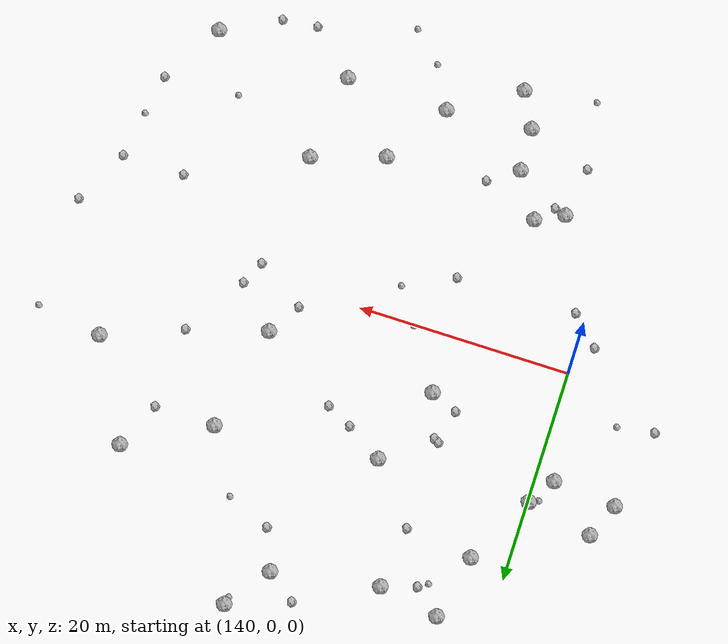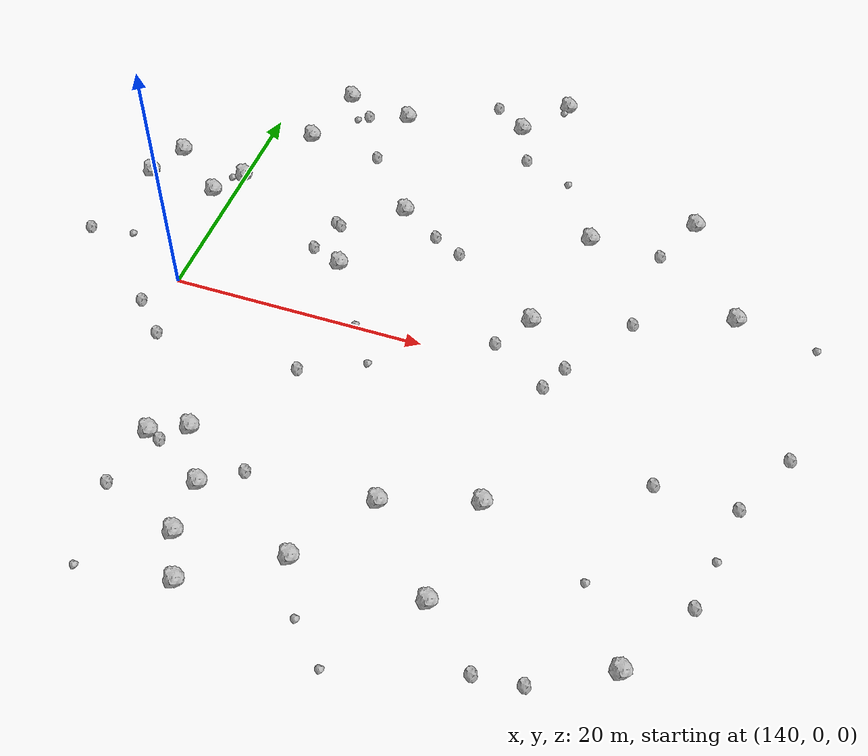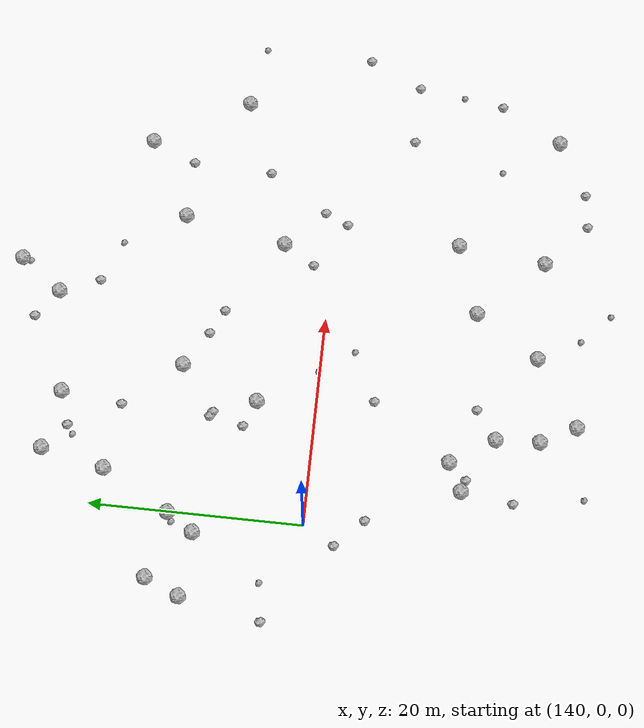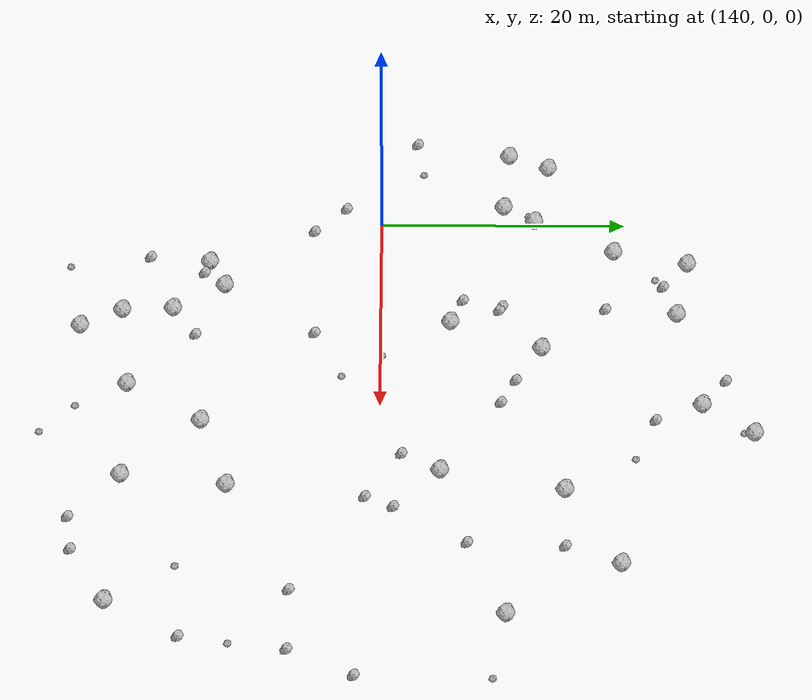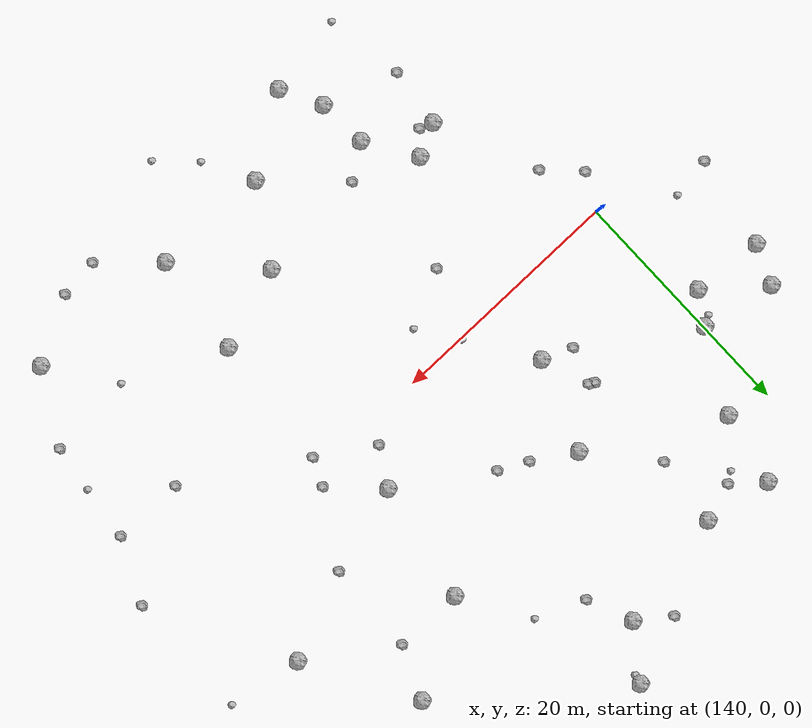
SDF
<sdf version="1.6">
 <world name="default">
  <include><uri>model://sun</uri></include>
  <model name="rock1_4_2">
   <include><uri>model://rock1</uri><pose>144.64250192313904 -14.090632971041494 0.5 0 0 0</pose></include>
  </model>
  <model name="rock1_4_3">
   <include><uri>model://rock1</uri><pose>169.15276391423814 14.626261997600743 0.5 0 0 0</pose></include>
  </model>
  <model name="rock1_4_4">
   <include><uri>model://rock1</uri><pose>167.18632134444454 4.754083272207637 0.5 0 0 0</pose></include>
  </model>
  <model name="rock1_4_5">
   <include><uri>model://rock1</uri><pose>167.7813527760365 -20.528619058137576 0.5 0 0 0</pose></include>
  </model>
  <model name="rock1_4_6">
   <include><uri>model://rock1</uri><pose>151.237564090406 5.610120131703425 0.5 0 0 0</pose></include>
  </model>
  <model name="rock1_4_7">
   <include><uri>model://rock1</uri><pose>176.74659971532765 18.913603670674448 0.5 0 0 0</pose></include>
  </model>
  <model name="rock1_4_8">
   <include><uri>model://rock1</uri><pose>149.8414704636917 -16.948022600745187 0.5 0 0 0</pose></include>
  </model>
  <model name="rock1_4_9">
   <include><uri>model://rock1</uri><pose>132.4435110493459 10.548731007284772 0.5 0 0 0</pose></include>
  </model>
  <model name="rock1_4_10">
   <include><uri>model://rock1</uri><pose>162.0222743503212 -14.356697334256124 0.5 0 0 0</pose></include>
  </model>
  <model name="rock1_4_11">
   <include><uri>model://rock1</uri><pose>180.68596905539462 -21.278496587072233 0.5 0 0 0</pose></include>
  </model>
  <model name="rock1_4_12">
   <include><uri>model://rock1</uri><pose>150.31614567877952 24.005497496785033 0.5 0 0 0</pose></include>
  </model>
  <model name="rock1_4_13">
   <include><uri>model://rock1</uri><pose>147.2605055158869 -12.80644516240374 0.5 0 0 0</pose></include>
  </model>
  <model name="rock1_4_14">
   <include><uri>model://rock1</uri><pose>181.82023672058972 9.853743029048815 0.5 0 0 0</pose></include>
  </model>
  <model name="rock1_4_15">
   <include><uri>model://rock1</uri><pose>133.81482526031587 13.773937729828702 0.5 0 0 0</pose></include>
  </model>
  <model name="rock1_4_16">
   <include><uri>model://rock1</uri><pose>150.0542052128294 -21.073131671114638 0.5 0 0 0</pose></include>
  </model>
  <model name="rock1_4_17">
   <include><uri>model://rock1</uri><pose>151.7894506981589 -24.431227533101392 0.5 0 0 0</pose></include>
  </model>
  <model name="rock1_4_18">
   <include><uri>model://rock1</uri><pose>163.13949806896662 29.81720338837848 0.5 0 0 0</pose></include>
  </model>
  <model name="rock1_4_19">
   <include><uri>model://rock1</uri><pose>154.07407073991988 12.971375293953272 0.5 0 0 0</pose></include>
  </model>
  <model name="rock1_4_20">
   <include><uri>model://rock1</uri><pose>158.11752959122077 -20.385787050005714 0.5 0 0 0</pose></include>
  </model>
  <model name="rock1_4_21">
   <include><uri>model://rock1</uri><pose>144.71885524077487 25.02038871296856 0.5 0 0 0</pose></include>
  </model>
  <model name="rock1_4_22">
   <include><uri>model://rock1</uri><pose>139.93554473795058 12.556926336063704 0.5 0 0 0</pose></include>
  </model>
  <model name="rock1_4_23">
   <include><uri>model://rock1</uri><pose>143.40151985656718 19.008981676477575 0.5 0 0 0</pose></include>
  </model>
  <model name="rock1_4_24">
   <include><uri>model://rock1</uri><pose>138.32663809733853 10.04192558386245 0.5 0 0 0</pose></include>
  </model>
  <model name="rock1_4_25">
   <include><uri>model://rock1</uri><pose>168.77348780011923 -12.14886064882317 0.5 0 0 0</pose></include>
  </model>
  <model name="rock1_4_26">
   <include><uri>model://rock1</uri><pose>160.15200510839117 25.75752766854547 0.5 0 0 0</pose></include>
  </model>
  <model name="rock2_4_0">
   <include><uri>model://rock2</uri><pose>152.33868534174414 -5.386155312732875 0.3 0 0 0</pose></include>
  </model>
  <model name="rock2_4_1">
   <include><uri>model://rock2</uri><pose>170.85324932848198 1.0940295219142655 0.3 0 0 0</pose></include>
  </model>
  <model name="rock2_4_2">
   <include><uri>model://rock2</uri><pose>165.30479063540196 1.7214932243329066 0.3 0 0 0</pose></include>
  </model>
  <model name="rock2_4_3">
   <include><uri>model://rock2</uri><pose>130.91231208686796 2.9451184628654232 0.3 0 0 0</pose></include>
  </model>
  <model name="rock2_4_4">
   <include><uri>model://rock2</uri><pose>149.793692302538 9.601223200955317 0.3 0 0 0</pose></include>
  </model>
  <model name="rock2_4_5">
   <include><uri>model://rock2</uri><pose>157.43607776296477 27.763638487406126 0.3 0 0 0</pose></include>
  </model>
  <model name="rock2_4_6">
   <include><uri>model://rock2</uri><pose>147.13028439252207 22.997591504285467 0.3 0 0 0</pose></include>
  </model>
  <model name="rock2_4_7">
   <include><uri>model://rock2</uri><pose>149.65201668694192 18.236371720773825 0.3 0 0 0</pose></include>
  </model>
  <model name="rock2_4_8">
   <include><uri>model://rock2</uri><pose>172.026787449361 -24.47590583455101 0.3 0 0 0</pose></include>
  </model>
  <model name="rock2_4_9">
   <include><uri>model://rock2</uri><pose>174.83691645942193 14.592409725688839 0.3 0 0 0</pose></include>
  </model>
  <model name="rock2_4_10">
   <include><uri>model://rock2</uri><pose>161.68039154116477 22.015994212397423 0.3 0 0 0</pose></include>
  </model>
  <model name="rock2_4_11">
   <include><uri>model://rock2</uri><pose>174.5162425059084 6.9004061759913 0.3 0 0 0</pose></include>
  </model>
  <model name="rock2_4_12">
   <include><uri>model://rock2</uri><pose>138.41761832313136 -2.9266801318731197 0.3 0 0 0</pose></include>
  </model>
  <model name="rock2_4_13">
   <include><uri>model://rock2</uri><pose>175.35159071288595 -24.12482453125274 0.3 0 0 0</pose></include>
  </model>
  <model name="rock2_4_14">
   <include><uri>model://rock2</uri><pose>185.29607053182704 -7.027791906840289 0.3 0 0 0</pose></include>
  </model>
  <model name="rock2_4_15">
   <include><uri>model://rock2</uri><pose>187.84227829215794 -1.826869797795446 0.3 0 0 0</pose></include>
  </model>
  <model name="rock2_4_16">
   <include><uri>model://rock2</uri><pose>145.71731062263535 -14.474749270492342 0.3 0 0 0</pose></include>
  </model>
  <model name="rock2_4_17">
   <include><uri>model://rock2</uri><pose>143.97454029756923 -18.95811659782916 0.3 0 0 0</pose></include>
  </model>
  <model name="rock2_4_18">
   <include><uri>model://rock2</uri><pose>179.37511406260603 -6.966660972026652 0.3 0 0 0</pose></include>
  </model>
  <model name="rock2_4_19">
   <include><uri>model://rock2</uri><pose>149.33955343752518 9.843810360071366 0.3 0 0 0</pose></include>
  </model>
  <model name="rock2_4_20">
   <include><uri>model://rock2</uri><pose>141.00958390751254 -5.543040418836181 0.3 0 0 0</pose></include>
  </model>
  <model name="rock2_4_21">
   <include><uri>model://rock2</uri><pose>157.44810920924266 10.879435630612008 0.3 0 0 0</pose></include>
  </model>
  <model name="rock2_4_22">
   <include><uri>model://rock2</uri><pose>152.54203881762731 -15.038763941656283 0.3 0 0 0</pose></include>
  </model>
  <model name="rock2_4_23">
   <include><uri>model://rock2</uri><pose>184.06978049514407 -15.424571392219345 0.3 0 0 0</pose></include>
  </model>
  <model name="rock2_4_24">
   <include><uri>model://rock2</uri><pose>148.71145463917094 6.643998110400659 0.3 0 0 0</pose></include>
  </model>
  <model name="rock2_4_25">
   <include><uri>model://rock2</uri><pose>169.8246797369573 -1.1564560511289343 0.3 0 0 0</pose></include>
  </model>
  <model name="rock2_4_26">
   <include><uri>model://rock2</uri><pose>159.8207576144433 9.670030551894634 0.3 0 0 0</pose></include>
  </model>
  <model name="rock3_4_0">
   <include><uri>model://rock3</uri><pose>163.0420833041074 -27.206953047698793 0.2 0 0 0</pose></include>
  </model>
  <model name="rock3_4_1">
   <include><uri>model://rock3</uri><pose>184.67729910324707 -11.576216230661494 0.2 0 0 0</pose></include>
  </model>
  <model name="rock3_4_2">
   <include><uri>model://rock3</uri><pose>162.9324580480294 29.033566927595892 0.2 0 0 0</pose></include>
  </model>
  <model name="rock3_4_3">
   <include><uri>model://rock3</uri><pose>160.2320990012525 -24.4638013097974 0.2 0 0 0</pose></include>
  </model>
  <model name="rock3_4_4">
   <include><uri>model://rock3</uri><pose>154.71540917027755 0.10179555246862293 0.2 0 0 0</pose></include>
  </model>
  <model name="rock3_4_5">
   <include><uri>model://rock3</uri><pose>134.33657069989883 3.4307385433574566 0.2 0 0 0</pose></include>
  </model>
  <model name="rock3_4_6">
   <include><uri>model://rock3</uri><pose>146.25708340184016 22.38135107647375 0.2 0 0 0</pose></include>
  </model>
  <model name="rock3_4_7">
   <include><uri>model://rock3</uri><pose>176.9464643665512 -15.90497616847043 0.2 0 0 0</pose></include>
  </model>
  <model name="rock3_4_8">
   <include><uri>model://rock3</uri><pose>156.96345756066876 -3.160054254614785 0.2 0 0 0</pose></include>
  </model>
  <model name="rock3_4_9">
   <include><uri>model://rock3</uri><pose>165.72214111870963 20.305220325480462 0.2 0 0 0</pose></include>
  </model>
  <model name="rock3_4_10">
   <include><uri>model://rock3</uri><pose>139.0633770212998 12.092688171988094 0.2 0 0 0</pose></include>
  </model>
  <model name="rock3_4_11">
   <include><uri>model://rock3</uri><pose>144.99220297531002 -25.501967206931404 0.2 0 0 0</pose></include>
  </model>
  <model name="rock3_4_12">
   <include><uri>model://rock3</uri><pose>188.01808944825834 8.805099326306724 0.2 0 0 0</pose></include>
  </model>
 </world>
</sdf>
